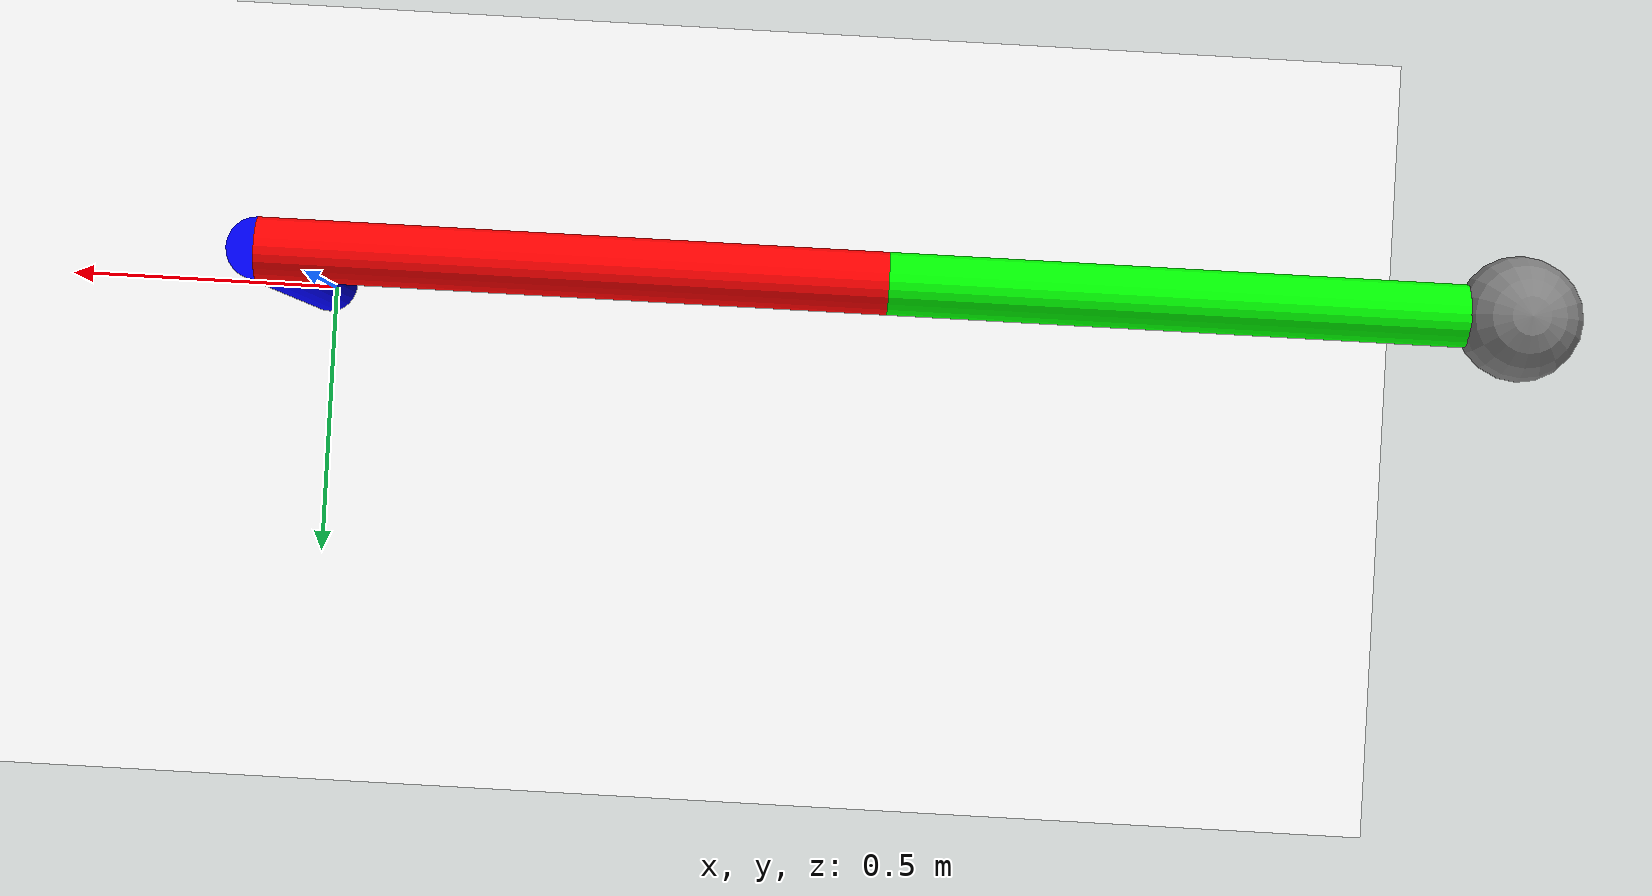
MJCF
<mujoco>

   <default>
      <joint damping="1"/>
      <motor ctrlrange="-3 3"/>
   </default>

   <option timestep="0.01" gravity="0 0 0" />
   <worldbody>
      <light diffuse=".5 .5 .5" pos="0 0 10" dir="0 0 -1"/>
      <geom type="plane" size="2 2 0.1" rgba="1 1 1 1"/>
      <body pos="0 0 0.6" euler="0 0 90">
         <joint name="t0" type="hinge" axis="0 0 1" pos="0 0 0"/>
         <geom type="cylinder" size="0.05 0.5" rgba="0 0 1 1"/>
         <body>
            <joint name="t1" type="hinge" axis="-1 0 0" pos="0 0 0.5"/>
            <geom pos="0 0.5 0.5" euler="90 0 0" type="cylinder" size="0.05 0.5" rgba="1 0 0 1"/>
            <body>
               <joint name="t2" type="hinge" axis="-1 0 0" pos="0 1 0.5"/>
               <geom pos="0 1.5 0.5" euler="90 0 0" type="cylinder" size="0.05 0.5" rgba="0 1 0 1"/>
               <site name="tip" size="0.1" pos="0 2 0.5"/>
            </body>
         </body>
      </body>
   </worldbody>
   <sensor>
      <framepos objtype="site" objname="tip"/>
   </sensor>
   <actuator>
      <position name="theta_0" joint="t0"/>
      <position name="theta_1" joint="t1"/>
      <position name="theta_2" joint="t2"/>
   </actuator>
</mujoco>
